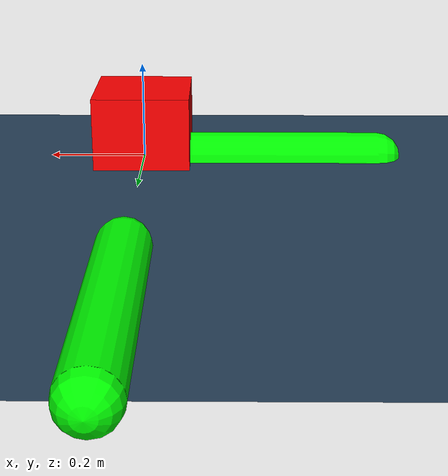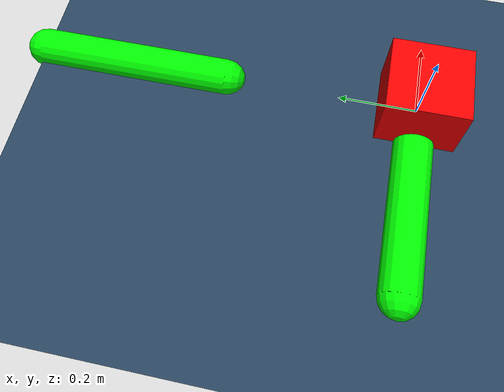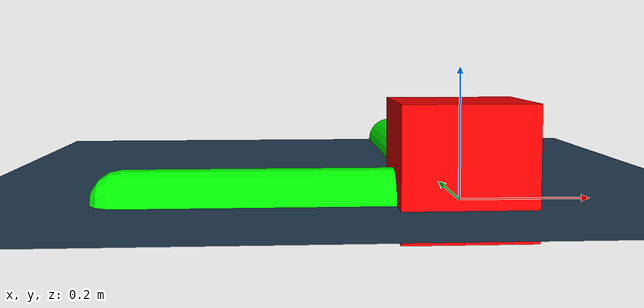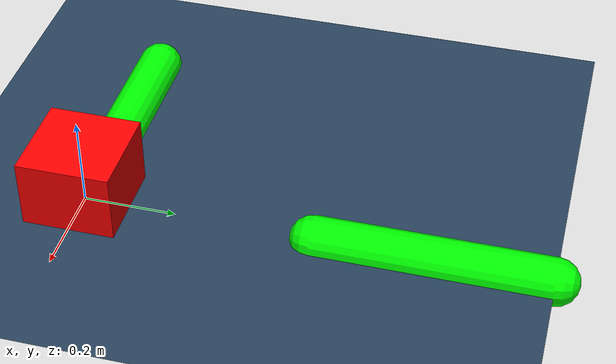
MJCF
<?xml version="1.0" ?>
<mujoco model="square_pull">
    <option timestep="0.005" />
    <asset>
        <texture type="2d" name="texplane" builtin="checker" rgb1="0.2 0.3 0.4" rgb2="0.1 0.2 0.3" width="512" height="512" mark="cross" />
        <material name="mplane" texture="texplane" />
    </asset>
    <worldbody>
        <geom type="plane" size="1 1 0.1" material="mplane" />
        <body name="square" pos="0 0 0.05">
            <geom type="box" size="0.1 0.1 0.1" rgba="1 0 0 1" />
        </body>
        <body name="rod1" pos="-0.5 0 0">
            <joint type="slide" axis="1 0 0"/>
            <geom type="capsule" fromto="0 0 0 0.5 0 0" size="0.05" rgba="0 1 0 1"/>
        </body>
        <body name="rod2" pos="0 0.5 0">
            <joint type="slide" axis="0 1 0"/>
            <geom type="capsule" fromto="0 0 0 0 0.5 0" size="0.05" rgba="0 1 0 1"/>
        </body>
    </worldbody>
</mujoco>
